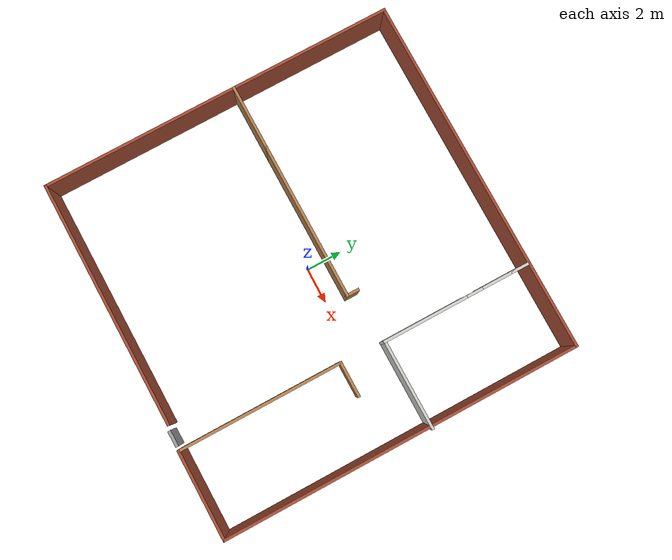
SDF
<?xml version='1.0'?>
<sdf version='1.7'>
  <model name='basic_world2.world'>
    <pose>0.123763 -0.069077 0 0 -0 0</pose>
    <link name='Door_0'>
      <collision name='Door_0_Collision'>
        <geometry>
          <box>
            <size>0.9 0.17 2</size>
          </box>
        </geometry>
        <pose>0 0 1 0 -0 0</pose>
      </collision>
      <visual name='Door_0_Visual'>
        <pose>0 0 1 0 -0 0</pose>
        <geometry>
          <box>
            <size>0.9 0.17 2</size>
          </box>
        </geometry>
        <material>
          <script>
            <uri>file://media/materials/scripts/gazebo.material</uri>
            <name>Gazebo/Grey</name>
          </script>
        </material>
      </visual>
      <pose>4.35533 -9.96223 0 0 -0 0</pose>
    </link>
    <link name='Wall_0'>
      <collision name='Wall_0_Collision'>
        <geometry>
          <box>
            <size>3.75 0.15 2.5</size>
          </box>
        </geometry>
        <pose>0 0 1.25 0 -0 0</pose>
      </collision>
      <visual name='Wall_0_Visual'>
        <pose>0 0 1.25 0 -0 0</pose>
        <geometry>
          <box>
            <size>3.75 0.15 2.5</size>
          </box>
        </geometry>
        <material>
          <script>
            <uri>file://media/materials/scripts/gazebo.material</uri>
            <name>Gazebo/Wood</name>
          </script>
          <ambient>1 1 1 1</ambient>
        </material>
        <meta>
          <layer>0</layer>
        </meta>
      </visual>
      <pose>-8.18472 1.075 0 0 -0 3.14159</pose>
    </link>
    <link name='Wall_1'>
      <collision name='Wall_1_Collision'>
        <geometry>
          <box>
            <size>11 0.15 2.5</size>
          </box>
        </geometry>
        <pose>0 0 1.25 0 -0 0</pose>
      </collision>
      <visual name='Wall_1_Visual'>
        <pose>0 0 1.25 0 -0 0</pose>
        <geometry>
          <box>
            <size>11 0.15 2.5</size>
          </box>
        </geometry>
        <material>
          <script>
            <uri>file://media/materials/scripts/gazebo.material</uri>
            <name>Gazebo/Bricks</name>
          </script>
          <ambient>1 1 1 1</ambient>
        </material>
        <meta>
          <layer>0</layer>
        </meta>
      </visual>
      <pose>-9.98472 -4.35 0 0 -0 -1.5708</pose>
    </link>
    <link name='Wall_11'>
      <collision name='Wall_11_Collision'>
        <geometry>
          <box>
            <size>5 0.15 2.5</size>
          </box>
        </geometry>
        <pose>0 0 1.25 0 -0 0</pose>
      </collision>
      <visual name='Wall_11_Visual'>
        <pose>0 0 1.25 0 -0 0</pose>
        <geometry>
          <box>
            <size>5 0.15 2.5</size>
          </box>
        </geometry>
        <material>
          <script>
            <uri>file://media/materials/scripts/gazebo.material</uri>
            <name>Gazebo/CeilingTiled</name>
          </script>
          <ambient>0.435294 0.796078 0.67451 1</ambient>
        </material>
        <meta>
          <layer>0</layer>
        </meta>
      </visual>
      <pose>7.55972 1.62222 0 0 -0 3.14159</pose>
    </link>
    <link name='Wall_12'>
      <pose>5.13472 5.29722 0 0 -0 1.5708</pose>
      <visual name='Wall_12_Visual_0'>
        <pose>-1.3529 0 1.25 0 -0 0</pose>
        <geometry>
          <box>
            <size>4.79419 0.15 2.5</size>
          </box>
        </geometry>
        <material>
          <script>
            <uri>file://media/materials/scripts/gazebo.material</uri>
            <name>Gazebo/CeilingTiled</name>
          </script>
          <ambient>0.435294 0.796078 0.67451 1</ambient>
        </material>
        <meta>
          <layer>0</layer>
        </meta>
      </visual>
      <collision name='Wall_12_Collision_0'>
        <geometry>
          <box>
            <size>4.79419 0.15 2.5</size>
          </box>
        </geometry>
        <pose>-1.3529 0 1.25 0 -0 0</pose>
      </collision>
      <visual name='Wall_12_Visual_1'>
        <pose>2.8471 0 1.25 0 -0 0</pose>
        <geometry>
          <box>
            <size>1.80581 0.15 2.5</size>
          </box>
        </geometry>
        <material>
          <script>
            <uri>file://media/materials/scripts/gazebo.material</uri>
            <name>Gazebo/CeilingTiled</name>
          </script>
          <ambient>0.435294 0.796078 0.67451 1</ambient>
        </material>
        <meta>
          <layer>0</layer>
        </meta>
      </visual>
      <collision name='Wall_12_Collision_1'>
        <geometry>
          <box>
            <size>1.80581 0.15 2.5</size>
          </box>
        </geometry>
        <pose>2.8471 0 1.25 0 -0 0</pose>
      </collision>
      <visual name='Wall_12_Visual_2'>
        <pose>1.49419 0 2.25 0 -0 0</pose>
        <geometry>
          <box>
            <size>0.9 0.15 0.5</size>
          </box>
        </geometry>
        <material>
          <script>
            <uri>file://media/materials/scripts/gazebo.material</uri>
            <name>Gazebo/CeilingTiled</name>
          </script>
          <ambient>0.435294 0.796078 0.67451 1</ambient>
        </material>
        <meta>
          <layer>0</layer>
        </meta>
      </visual>
      <collision name='Wall_12_Collision_2'>
        <geometry>
          <box>
            <size>0.9 0.15 0.5</size>
          </box>
        </geometry>
        <pose>1.49419 0 2.25 0 -0 0</pose>
      </collision>
    </link>
    <link name='Wall_2'>
      <collision name='Wall_2_Collision'>
        <geometry>
          <box>
            <size>13.75 0.15 2.5</size>
          </box>
        </geometry>
        <pose>0 0 1.25 0 -0 0</pose>
      </collision>
      <visual name='Wall_2_Visual'>
        <pose>0 0 1.25 0 -0 0</pose>
        <geometry>
          <box>
            <size>13.75 0.15 2.5</size>
          </box>
        </geometry>
        <material>
          <script>
            <uri>file://media/materials/scripts/gazebo.material</uri>
            <name>Gazebo/Bricks</name>
          </script>
          <ambient>1 1 1 1</ambient>
        </material>
        <meta>
          <layer>0</layer>
        </meta>
      </visual>
      <pose>-3.18472 -9.775 0 0 -0 0</pose>
    </link>
    <link name='Wall_36'>
      <collision name='Wall_36_Collision'>
        <geometry>
          <box>
            <size>1 0.15 2.5</size>
          </box>
        </geometry>
        <pose>0 0 1.25 0 -0 0</pose>
      </collision>
      <visual name='Wall_36_Visual'>
        <pose>0 0 1.25 0 -0 0</pose>
        <geometry>
          <box>
            <size>1 0.15 2.5</size>
          </box>
        </geometry>
        <material>
          <script>
            <uri>file://media/materials/scripts/gazebo.material</uri>
            <name>Gazebo/CeilingTiled</name>
          </script>
          <ambient>0.435294 0.796078 0.67451 1</ambient>
        </material>
        <meta>
          <layer>0</layer>
        </meta>
      </visual>
      <pose>5.13472 9.39722 0 0 -0 1.5708</pose>
    </link>
    <link name='Wall_38'>
      <collision name='Wall_38_Collision'>
        <geometry>
          <box>
            <size>8.75 0.15 2.5</size>
          </box>
        </geometry>
        <pose>0 0 1.25 0 -0 0</pose>
      </collision>
      <visual name='Wall_38_Visual'>
        <pose>0 0 1.25 0 -0 0</pose>
        <geometry>
          <box>
            <size>8.75 0.15 2.5</size>
          </box>
        </geometry>
        <material>
          <script>
            <uri>file://media/materials/scripts/gazebo.material</uri>
            <name>Gazebo/Wood</name>
          </script>
          <ambient>1 1 1 1</ambient>
        </material>
        <meta>
          <layer>0</layer>
        </meta>
      </visual>
      <pose>-2.08472 1.075 0 0 -0 0</pose>
    </link>
    <link name='Wall_39'>
      <collision name='Wall_39_Collision'>
        <geometry>
          <box>
            <size>0.75 0.15 2.5</size>
          </box>
        </geometry>
        <pose>0 0 1.25 0 -0 0</pose>
      </collision>
      <visual name='Wall_39_Visual'>
        <pose>0 0 1.25 0 -0 0</pose>
        <geometry>
          <box>
            <size>0.75 0.15 2.5</size>
          </box>
        </geometry>
        <material>
          <script>
            <uri>file://media/materials/scripts/gazebo.material</uri>
            <name>Gazebo/Wood</name>
          </script>
          <ambient>1 1 1 1</ambient>
        </material>
        <meta>
          <layer>0</layer>
        </meta>
      </visual>
      <pose>2.21528 1.375 0 0 -0 1.5708</pose>
    </link>
    <link name='Wall_4'>
      <collision name='Wall_4_Collision'>
        <geometry>
          <box>
            <size>9 0.15 2.5</size>
          </box>
        </geometry>
        <pose>0 0 1.25 0 -0 0</pose>
      </collision>
      <visual name='Wall_4_Visual'>
        <pose>0 0 1.25 0 -0 0</pose>
        <geometry>
          <box>
            <size>9 0.15 2.5</size>
          </box>
        </geometry>
        <material>
          <script>
            <uri>file://media/materials/scripts/gazebo.material</uri>
            <name>Gazebo/Bricks</name>
          </script>
          <ambient>1 1 1 1</ambient>
        </material>
        <meta>
          <layer>0</layer>
        </meta>
      </visual>
      <pose>-9.98472 5.5 0 0 -0 1.5708</pose>
    </link>
    <link name='Wall_5'>
      <collision name='Wall_5_Collision'>
        <geometry>
          <box>
            <size>20 0.15 2.5</size>
          </box>
        </geometry>
        <pose>0 0 1.25 0 -0 0</pose>
      </collision>
      <visual name='Wall_5_Visual'>
        <pose>0 0 1.25 0 -0 0</pose>
        <geometry>
          <box>
            <size>20 0.15 2.5</size>
          </box>
        </geometry>
        <material>
          <script>
            <uri>file://media/materials/scripts/gazebo.material</uri>
            <name>Gazebo/Bricks</name>
          </script>
          <ambient>1 1 1 1</ambient>
        </material>
        <meta>
          <layer>0</layer>
        </meta>
      </visual>
      <pose>-0.059721 9.925 0 0 -0 0</pose>
    </link>
    <link name='Wall_6'>
      <collision name='Wall_6_Collision'>
        <geometry>
          <box>
            <size>20 0.15 2.5</size>
          </box>
        </geometry>
        <pose>0 0 1.25 0 -0 0</pose>
      </collision>
      <visual name='Wall_6_Visual'>
        <pose>0 0 1.25 0 -0 0</pose>
        <geometry>
          <box>
            <size>20 0.15 2.5</size>
          </box>
        </geometry>
        <material>
          <script>
            <uri>file://media/materials/scripts/gazebo.material</uri>
            <name>Gazebo/Bricks</name>
          </script>
          <ambient>1 1 1 1</ambient>
        </material>
        <meta>
          <layer>0</layer>
        </meta>
      </visual>
      <pose>9.86528 0 0 0 -0 -1.5708</pose>
    </link>
    <link name='Wall_7'>
      <collision name='Wall_7_Collision'>
        <geometry>
          <box>
            <size>5 0.15 2.5</size>
          </box>
        </geometry>
        <pose>0 0 1.25 0 -0 0</pose>
      </collision>
      <visual name='Wall_7_Visual'>
        <pose>0 0 1.25 0 -0 0</pose>
        <geometry>
          <box>
            <size>5 0.15 2.5</size>
          </box>
        </geometry>
        <material>
          <script>
            <uri>file://media/materials/scripts/gazebo.material</uri>
            <name>Gazebo/Bricks</name>
          </script>
          <ambient>1 1 1 1</ambient>
        </material>
        <meta>
          <layer>0</layer>
        </meta>
      </visual>
      <pose>7.44028 -9.925 0 0 -0 3.14159</pose>
    </link>
    <link name='Wall_8'>
      <collision name='Wall_8_Collision'>
        <geometry>
          <box>
            <size>9.25 0.15 2.5</size>
          </box>
        </geometry>
        <pose>0 0 1.25 0 -0 0</pose>
      </collision>
      <visual name='Wall_8_Visual'>
        <pose>0 0 1.25 0 -0 0</pose>
        <geometry>
          <box>
            <size>9.25 0.15 2.5</size>
          </box>
        </geometry>
        <material>
          <script>
            <uri>file://media/materials/scripts/gazebo.material</uri>
            <name>Gazebo/Wood</name>
          </script>
          <ambient>1 1 1 1</ambient>
        </material>
        <meta>
          <layer>0</layer>
        </meta>
      </visual>
      <pose>5.01528 -5.375 0 0 -0 1.5708</pose>
    </link>
    <link name='Wall_9'>
      <collision name='Wall_9_Collision'>
        <geometry>
          <box>
            <size>2 0.15 2.5</size>
          </box>
        </geometry>
        <pose>0 0 1.25 0 -0 0</pose>
      </collision>
      <visual name='Wall_9_Visual'>
        <pose>0 0 1.25 0 -0 0</pose>
        <geometry>
          <box>
            <size>2 0.15 2.5</size>
          </box>
        </geometry>
        <material>
          <script>
            <uri>file://media/materials/scripts/gazebo.material</uri>
            <name>Gazebo/Wood</name>
          </script>
          <ambient>1 1 1 1</ambient>
        </material>
        <meta>
          <layer>0</layer>
        </meta>
      </visual>
      <pose>5.94028 -0.825 0 0 -0 0</pose>
    </link>
    <static>1</static>
  </model>
</sdf>
